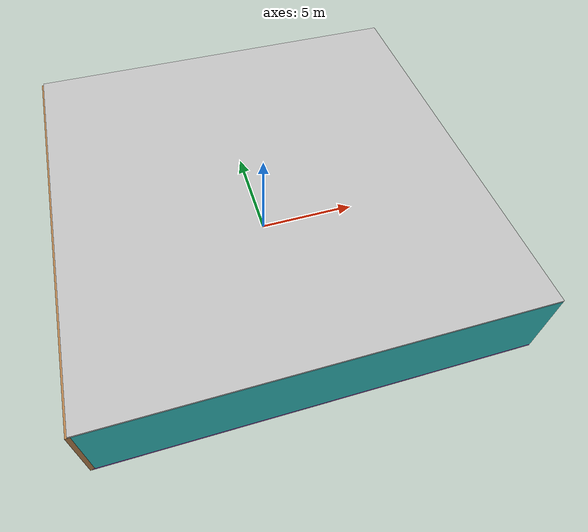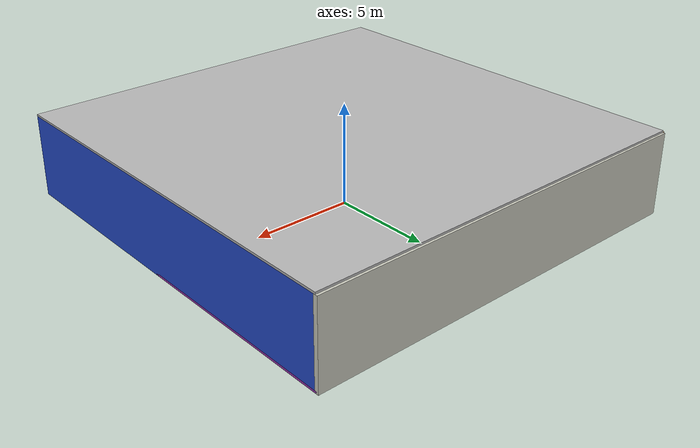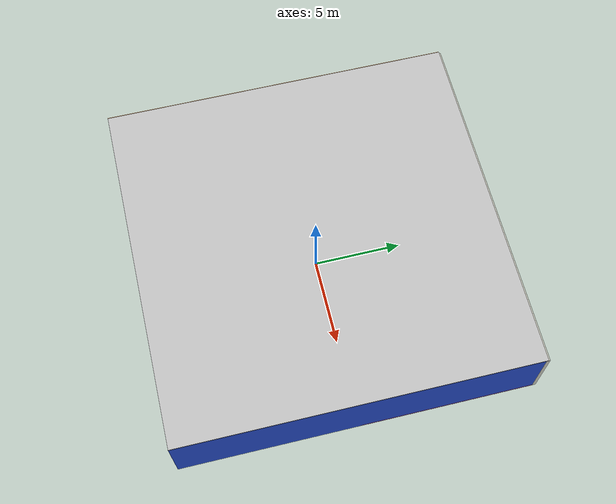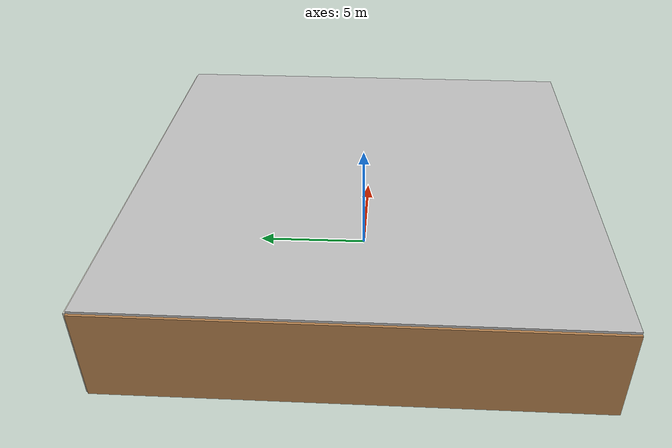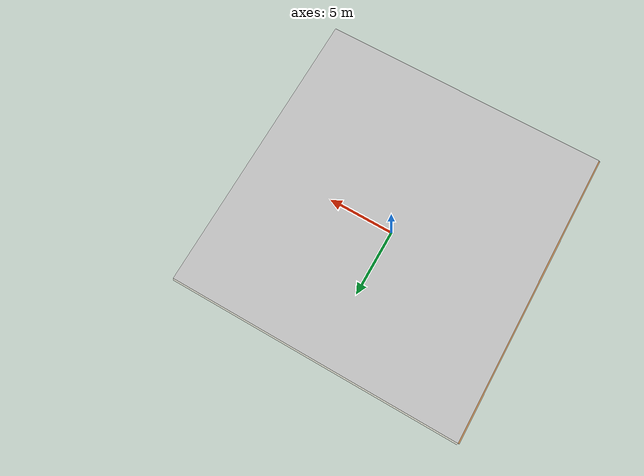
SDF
<sdf version="1.4">
 <world name="default">
  <physics type="ode">
   <max_step_size>0.001</max_step_size>
   <real_time_factor>1</real_time_factor>
   <real_time_update_rate>1000</real_time_update_rate>
   <gravity>0 0 -9.8</gravity>
  </physics>
  <scene><ambient>0.4 0.4 0.4 1</ambient><background>0.7 0.7 0.7 1</background><shadows>1</shadows></scene>
  <model name="Surrounding">
   <static>1</static>
   <link name="Ceiling">
    <collision name="Ceiling_Collision"><geometry><box><size>20 20 0.1</size></box></geometry></collision>
    <visual name="Ceiling_Visual">
     <geometry><box><size>20 20 0.1</size></box></geometry>
     <material>
      <script><uri>file://media/materials/scripts/gazebo.material</uri><name>Gazebo/PioneerBody</name></script>
     </material>
    </visual>
    <pose>0 0 4.05 0 0 0</pose>
   </link>
   <link name="Wall_South">
    <collision name="Wall_South_Collision">
     <geometry><box><size>20 0 4</size></box></geometry>
     <pose>0 0 2 0 -0 0</pose>
    </collision>
    <visual name="Wall_South_Visual">
     <pose>0 0 2 0 -0 0</pose>
     <geometry><box><size>20 0 4</size></box></geometry>
     <material>
      <script><uri>file://media/materials/scripts/gazebo.material</uri><name>Gazebo/Turquoise</name></script>
     </material>
    </visual>
    <velocity_decay><linear>0</linear><angular>0</angular></velocity_decay>
    <pose>0 -10 0 0 -0 0</pose>
   </link>
   <link name="Wall_East">
    <collision name="Wall_21_Collision">
     <geometry><box><size>20 0 4</size></box></geometry>
     <pose>0 0 2 0 -0 0</pose>
    </collision>
    <visual name="Wall_21_Visual">
     <pose>0 0 2 0 -0 0</pose>
     <geometry><box><size>20 0 4</size></box></geometry>
     <material>
      <script><uri>file://media/materials/scripts/gazebo.material</uri><name>Gazebo/BlueLaser</name></script>
     </material>
    </visual>
    <velocity_decay><linear>0</linear><angular>0</angular></velocity_decay>
    <pose>10 0 0 0 -0 1.5708</pose>
   </link>
   <link name="Wall_North">
    <collision name="Wall_22_Collision">
     <geometry><box><size>20 0.2 4</size></box></geometry>
     <pose>0 0 2 0 -0 0</pose>
    </collision>
    <visual name="Wall_22_Visual">
     <pose>0 0 2 0 -0 0</pose>
     <geometry><box><size>20 0.2 4</size></box></geometry>
     <material>
      <script><uri>file://media/materials/scripts/gazebo.material</uri><name>Gazebo/PaintedWall</name></script>
     </material>
    </visual>
    <velocity_decay><linear>0</linear><angular>0</angular></velocity_decay>
    <pose>0 10 0 0 -0 0</pose>
   </link>
   <link name="Wall_West">
    <collision name="Wall_23_Collision">
     <geometry><box><size>20 0.2 4</size></box></geometry>
     <pose>0 0 2 0 -0 0</pose>
    </collision>
    <visual name="Wall_23_Visual">
     <pose>0 0 2 0 -0 0</pose>
     <geometry><box><size>20 0.2 4</size></box></geometry>
     <material>
      <script><uri>file://media/materials/scripts/gazebo.material</uri><name>Gazebo/WoodPallet</name></script>
     </material>
    </visual>
    <velocity_decay><linear>0</linear><angular>0</angular></velocity_decay>
    <pose>-10 0 0 0 0 -1.5708</pose>
   </link>
   <link name="Ground_link">
    <collision name="collision">
     <pose>0 0 .05 0 -0 0</pose>
     <geometry><box><size>20 20 0.1</size></box></geometry>
    </collision>
    <visual name="visual">
     <pose>0 0 .05 0 -0 0</pose>
     <geometry><box><size>20 20 0.1</size></box></geometry>
     <material>
      <script><uri>file://media/materials/scripts/gazebo.material</uri><name>Gazebo/Purple</name></script>
     </material>
    </visual>
   </link>
   <static>1</static>
  </model>
  <spherical_coordinates>
   <surface_model>EARTH_WGS84</surface_model>
   <latitude_deg>0</latitude_deg>
   <longitude_deg>0</longitude_deg>
   <elevation>0</elevation>
   <heading_deg>0</heading_deg>
  </spherical_coordinates>
  <light name="lightball_0" type="diffuse">
   <diffuse>0.8 0.8 0.8 1</diffuse>
   <specular>0.2 0.2 0.2 1</specular>
   <attenuation>
    <range>100</range>
    <constant>0.7</constant>
    <linear>0.01</linear>
    <quadratic>0.001</quadratic>
   </attenuation>
   <direction>-0.5 0.1 -0.9</direction>
   <pose>5.11846573708 -8.44305306389 2.3760229936 0 0 0</pose>
  </light>
  <light name="lightball_1" type="diffuse">
   <diffuse>0.8 0.8 0.8 1</diffuse>
   <specular>0.2 0.2 0.2 1</specular>
   <attenuation>
    <range>100</range>
    <constant>0.7</constant>
    <linear>0.01</linear>
    <quadratic>0.001</quadratic>
   </attenuation>
   <direction>-0.5 0.1 -0.9</direction>
   <pose>-8.39721751095 -7.7117142358 0.935782062401 0 0 0</pose>
  </light>
  <light name="lightball_2" type="diffuse">
   <diffuse>0.8 0.8 0.8 1</diffuse>
   <specular>0.2 0.2 0.2 1</specular>
   <attenuation>
    <range>100</range>
    <constant>0.7</constant>
    <linear>0.01</linear>
    <quadratic>0.001</quadratic>
   </attenuation>
   <direction>-0.5 0.1 -0.9</direction>
   <pose>-3.67483126594 -4.66076038641 2.30879821623 0 0 0</pose>
  </light>
  <light name="lightball_3" type="diffuse">
   <diffuse>0.8 0.8 0.8 1</diffuse>
   <specular>0.2 0.2 0.2 1</specular>
   <attenuation>
    <range>100</range>
    <constant>0.7</constant>
    <linear>0.01</linear>
    <quadratic>0.001</quadratic>
   </attenuation>
   <direction>-0.5 0.1 -0.9</direction>
   <pose>-5.31210328382 4.22473952198 2.59363272094 0 0 0</pose>
  </light>
  <light name="lightball_4" type="diffuse">
   <diffuse>0.8 0.8 0.8 1</diffuse>
   <specular>0.2 0.2 0.2 1</specular>
   <attenuation>
    <range>100</range>
    <constant>0.7</constant>
    <linear>0.01</linear>
    <quadratic>0.001</quadratic>
   </attenuation>
   <direction>-0.5 0.1 -0.9</direction>
   <pose>-0.798888419788 -9.38702787905 1.99108454501 0 0 0</pose>
  </light>
  <light name="lightball_5" type="diffuse">
   <diffuse>0.8 0.8 0.8 1</diffuse>
   <specular>0.2 0.2 0.2 1</specular>
   <attenuation>
    <range>100</range>
    <constant>0.7</constant>
    <linear>0.01</linear>
    <quadratic>0.001</quadratic>
   </attenuation>
   <direction>-0.5 0.1 -0.9</direction>
   <pose>-6.551361257 9.38058657788 2.18784242377 0 0 0</pose>
  </light>
  <light name="lightball_6" type="diffuse">
   <diffuse>0.8 0.8 0.8 1</diffuse>
   <specular>0.2 0.2 0.2 1</specular>
   <attenuation>
    <range>100</range>
    <constant>0.7</constant>
    <linear>0.01</linear>
    <quadratic>0.001</quadratic>
   </attenuation>
   <direction>-0.5 0.1 -0.9</direction>
   <pose>-6.09427016537 -5.72797731288 2.99444912212 0 0 0</pose>
  </light>
  <light name="lightball_7" type="diffuse">
   <diffuse>0.8 0.8 0.8 1</diffuse>
   <specular>0.2 0.2 0.2 1</specular>
   <attenuation>
    <range>100</range>
    <constant>0.7</constant>
    <linear>0.01</linear>
    <quadratic>0.001</quadratic>
   </attenuation>
   <direction>-0.5 0.1 -0.9</direction>
   <pose>-6.92548031812 -8.1780889997 1.81437398416 0 0 0</pose>
  </light>
  <light name="lightball_8" type="diffuse">
   <diffuse>0.8 0.8 0.8 1</diffuse>
   <specular>0.2 0.2 0.2 1</specular>
   <attenuation>
    <range>100</range>
    <constant>0.7</constant>
    <linear>0.01</linear>
    <quadratic>0.001</quadratic>
   </attenuation>
   <direction>-0.5 0.1 -0.9</direction>
   <pose>2.50984867634 -4.60169064316 1.28998446292 0 0 0</pose>
  </light>
  <light name="lightball_9" type="diffuse">
   <diffuse>0.8 0.8 0.8 1</diffuse>
   <specular>0.2 0.2 0.2 1</specular>
   <attenuation>
    <range>100</range>
    <constant>0.7</constant>
    <linear>0.01</linear>
    <quadratic>0.001</quadratic>
   </attenuation>
   <direction>-0.5 0.1 -0.9</direction>
   <pose>3.77612715539 4.3332060756 2.37881886262 0 0 0</pose>
  </light>
  <light name="lightball_10" type="diffuse">
   <diffuse>0.8 0.8 0.8 1</diffuse>
   <specular>0.2 0.2 0.2 1</specular>
   <attenuation>
    <range>100</range>
    <constant>0.7</constant>
    <linear>0.01</linear>
    <quadratic>0.001</quadratic>
   </attenuation>
   <direction>-0.5 0.1 -0.9</direction>
   <pose>9.72158828163 1.45046033778 2.28217679916 0 0 0</pose>
  </light>
  <light name="lightball_11" type="diffuse">
   <diffuse>0.8 0.8 0.8 1</diffuse>
   <specular>0.2 0.2 0.2 1</specular>
   <attenuation>
    <range>100</range>
    <constant>0.7</constant>
    <linear>0.01</linear>
    <quadratic>0.001</quadratic>
   </attenuation>
   <direction>-0.5 0.1 -0.9</direction>
   <pose>2.30603531835 -0.882401184698 3.03801120774 0 0 0</pose>
  </light>
  <light name="lightball_12" type="diffuse">
   <diffuse>0.8 0.8 0.8 1</diffuse>
   <specular>0.2 0.2 0.2 1</specular>
   <attenuation>
    <range>100</range>
    <constant>0.7</constant>
    <linear>0.01</linear>
    <quadratic>0.001</quadratic>
   </attenuation>
   <direction>-0.5 0.1 -0.9</direction>
   <pose>-4.40215167249 9.56719780156 3.68469530559 0 0 0</pose>
  </light>
  <light name="lightball_13" type="diffuse">
   <diffuse>0.8 0.8 0.8 1</diffuse>
   <specular>0.2 0.2 0.2 1</specular>
   <attenuation>
    <range>100</range>
    <constant>0.7</constant>
    <linear>0.01</linear>
    <quadratic>0.001</quadratic>
   </attenuation>
   <direction>-0.5 0.1 -0.9</direction>
   <pose>4.64489474769 8.19989008566 2.70841901151 0 0 0</pose>
  </light>
  <include><uri>model://cabinet</uri><pose>-7.64253740947 -4.84911069386 0 0 0 1.76674064738</pose></include>
  <include><uri>model://cabinet</uri><pose>-4.44680863886 -8.2856841974 0 0 0 0.0333145781549</pose></include>
  <include>
   <uri>model://construction_cone</uri>
   <pose>-4.58379407339 7.84775652056 0 0 0 2.94860144532</pose>
  </include>
  <include>
   <uri>model://construction_cone</uri>
   <pose>-1.69898473023 -7.84261509219 0 0 0 2.43953228439</pose>
  </include>
  <include>
   <uri>model://robocup_3Dsim_goal</uri>
   <pose>1.02189051096 -3.80892521739 0 0 0 2.16065376868</pose>
  </include>
  <include><uri>model://cabinet</uri><pose>1.73312787046 4.60435951415 0 0 0 0.288834886662</pose></include>
  <include><uri>model://cabinet</uri><pose>5.24586826498 -5.16517162966 0 0 0 3.1331907439</pose></include>
  <include><uri>model://cabinet</uri><pose>4.0352502042 3.96331525296 0 0 0 2.93329603117</pose></include>
  <include><uri>model://cabinet</uri><pose>4.31372145894 6.76247035715 0 0 0 1.51187698907</pose></include>
  <include><uri>model://cabinet</uri><pose>6.75088401621 5.16457158368 0 0 0 1.18674105935</pose></include>
 </world>
</sdf>

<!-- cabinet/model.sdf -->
<sdf version="1.5">
  <model name="cabinet">
    <static>true</static>
    <link name="cabinet_bottom_plate">
      <inertial>
        <pose>0 0 -1 0 0 0</pose>
        <inertia>
          <ixx>2.050000</ixx>
          <ixy>0</ixy>
          <ixz>0</ixz>
          <iyy>2.050000</iyy>
          <iyz>0</iyz>
          <izz>2.050000</izz>
        </inertia>
        <mass>25.000000</mass>
      </inertial>
      <collision name="cabinet_bottom_plate_geom">
        <pose>0 0 0.010000 0 0 0</pose>
        <geometry>
          <box>
            <size>0.450000 0.450000 0.020000</size>
          </box>
        </geometry>
      </collision>
      <visual name="cabinet_bottom_plate_geom_visual">
        <pose>0 0 0.010000 0 0 0</pose>
        <geometry>
          <box>
            <size>0.450000 0.450000 0.020000</size>
          </box>
        </geometry>
        <material>
          <script>
            <uri>model://media/materials/scripts/gazebo.material</uri>
            <name>Gazebo/Wood</name>
          </script>
        </material>
      </visual>
      <collision name="cabinet_bottom_plate_geom_cabinet_back_plate">
        <pose>0.235000 0 0.510000 0 0 0</pose>
        <geometry>
          <box>
            <size>0.020000 0.450000 1.020000</size>
          </box>
        </geometry>
      </collision>
      <visual name="cabinet_bottom_plate_geom_cabinet_back_plate_visual">
        <pose>0.235000 0 0.510000 0 0 0</pose>
        <geometry>
          <box>
            <size>0.020000 0.450000 1.020000</size>
          </box>
        </geometry>
        <material>
          <script>
            <uri>model://media/materials/scripts/gazebo.material</uri>
            <name>Gazebo/Wood</name>
          </script>
        </material>
      </visual>
      <collision name="cabinet_bottom_plate_geom_cabinet_left_plate">
        <pose>0 0.235000 0.510000 0 0 0</pose>
        <geometry>
          <box>
            <size>0.450000 0.020000 1.020000</size>
          </box>
        </geometry>
      </collision>
      <visual name="cabinet_bottom_plate_geom_cabinet_left_plate_visual">
        <pose>0 0.235000 0.510000 0 0 0</pose>
        <geometry>
          <box>
            <size>0.450000 0.020000 1.020000</size>
          </box>
        </geometry>
        <material>
          <script>
            <uri>model://media/materials/scripts/gazebo.material</uri>
            <name>Gazebo/Wood</name>
          </script>
        </material>
      </visual>
      <collision name="cabinet_bottom_plate_geom_cabinet_middle_plate">
        <pose>0 0 0.510000 0 0 0</pose>
        <geometry>
          <box>
            <size>0.450000 0.450000 0.020000</size>
          </box>
        </geometry>
      </collision>
      <visual name="cabinet_bottom_plate_geom_cabinet_middle_plate_visual">
        <pose>0 0 0.510000 0 0 0</pose>
        <geometry>
          <box>
            <size>0.450000 0.450000 0.020000</size>
          </box>
        </geometry>
        <material>
          <script>
            <uri>model://media/materials/scripts/gazebo.material</uri>
            <name>Gazebo/Wood</name>
          </script>
        </material>
      </visual>
      <collision name="cabinet_bottom_plate_geom_cabinet_right_plate">
        <pose>0 -0.235000 0.510000 0 0 0</pose>
        <geometry>
          <box>
            <size>0.450000 0.020000 1.020000</size>
          </box>
        </geometry>
      </collision>
      <visual name="cabinet_bottom_plate_geom_cabinet_right_plate_visual">
        <pose>0 -0.235000 0.510000 0 0 0</pose>
        <geometry>
          <box>
            <size>0.450000 0.020000 1.020000</size>
          </box>
        </geometry>
        <material>
          <script>
            <uri>model://media/materials/scripts/gazebo.material</uri>
            <name>Gazebo/Wood</name>
          </script>
        </material>
      </visual>
      <collision name="cabinet_bottom_plate_geom_cabinet_top_plate">
        <pose>0 0 1.010000 0 0 0</pose>
        <geometry>
          <box>
            <size>0.450000 0.450000 0.020000</size>
          </box>
        </geometry>
      </collision>
      <visual name="cabinet_bottom_plate_geom_cabinet_top_plate_visual">
        <pose>0 0 1.010000 0 0 0</pose>
        <geometry>
          <box>
            <size>0.450000 0.450000 0.020000</size>
          </box>
        </geometry>
        <material>
          <script>
            <uri>model://media/materials/scripts/gazebo.material</uri>
            <name>Gazebo/Wood</name>
          </script>
        </material>
      </visual>
    </link>
  </model>
</sdf>

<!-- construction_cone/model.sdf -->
<sdf version="1.5">
  <model name="Construction Cone">
    <link name="link">
      <collision name="collision">
        <geometry>
          <mesh>
            <scale>10 10 10</scale>
            <uri>file://isr-testbed/construction_cone/meshes/construction_cone.dae</uri>
          </mesh>
        </geometry>
      </collision>
      <visual name="visual">
        <geometry>
          <mesh>
            <scale>10 10 10</scale>
            <uri>file://isr-testbed/construction_cone/meshes/construction_cone.dae</uri>
          </mesh>
        </geometry>
      </visual>
    </link>
  </model>
</sdf>

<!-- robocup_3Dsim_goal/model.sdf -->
<sdf version="1.5">
  <model name="robocup_3d_goal">
    <static>true</static>
    <link name="left_post">
      <pose>0 1.05 0.45 0 0 0</pose>
      <collision name="collision">
        <geometry>
          <cylinder>
            <radius>0.05</radius>
            <length>0.9</length>
          </cylinder>
        </geometry>
      </collision>
      <visual name="visual">
        <geometry>
          <cylinder>
            <radius>0.05</radius>
            <length>0.9</length>
          </cylinder>
        </geometry>
        <material>
          <script>
            <uri>file://media/materials/scripts/gazebo.material</uri>
            <name>Gazebo/ZincYellow</name>
          </script>
        </material>
      </visual>
    </link>
    <link name="left_support_horiz_lower">
      <pose>0.30 1.05 0.01 0 0 0</pose>
      <collision name="collision">
        <geometry>
          <box>
            <size>0.50 0.02 0.02</size>
          </box>
        </geometry>
      </collision>
      <visual name="visual">
        <geometry>
          <box>
            <size>0.50 0.02 0.02</size>
          </box>
        </geometry>
        <material>
          <script>
            <uri>file://media/materials/scripts/gazebo.material</uri>
            <name>Gazebo/White</name>
          </script>
        </material>
      </visual>
    </link>
    <link name="left_support_horiz_upper">
      <pose>0.30 1.05 0.79 0 0 0</pose>
      <collision name="collision">
        <geometry>
          <box>
            <size>0.50 0.02 0.02</size>
          </box>
        </geometry>
      </collision>
      <visual name="visual">
        <geometry>
          <box>
            <size>0.50 0.02 0.02</size>
          </box>
        </geometry>
        <material>
          <script>
            <uri>file://media/materials/scripts/gazebo.material</uri>
            <name>Gazebo/White</name>
          </script>
        </material>
      </visual>
    </link>
    <link name="left_support_vertical">
      <pose>0.56 1.05 0.4 0 1.5708 0</pose>
      <collision name="collision">
        <geometry>
          <box>
            <size>0.80 0.02 0.02</size>
          </box>
        </geometry>
      </collision>
      <visual name="visual">
        <geometry>
          <box>
            <size>0.80 0.02 0.02</size>
          </box>
        </geometry>
        <material>
          <script>
            <uri>file://media/materials/scripts/gazebo.material</uri>
            <name>Gazebo/White</name>
          </script>
        </material>
      </visual>
    </link>
    <link name="right_support_horiz_lower">
      <pose>0.30 -1.05 0.01 0 0 0</pose>
      <collision name="collision">
        <geometry>
          <box>
            <size>0.50 0.02 0.02</size>
          </box>
        </geometry>
      </collision>
      <visual name="visual">
        <geometry>
          <box>
            <size>0.50 0.02 0.02</size>
          </box>
        </geometry>
        <material>
          <script>
            <uri>file://media/materials/scripts/gazebo.material</uri>
            <name>Gazebo/White</name>
          </script>
        </material>
      </visual>
    </link>
    <link name="right_support_horiz_upper">
      <pose>0.30 -1.05 0.79 0 0 0</pose>
      <collision name="collision">
        <geometry>
          <box>
            <size>0.50 0.02 0.02</size>
          </box>
        </geometry>
      </collision>
      <visual name="visual">
        <geometry>
          <box>
            <size>0.50 0.02 0.02</size>
          </box>
        </geometry>
        <material>
          <script>
            <uri>file://media/materials/scripts/gazebo.material</uri>
            <name>Gazebo/White</name>
          </script>
        </material>
      </visual>
    </link>
    <link name="right_support_vertical">
      <pose>0.56 -1.05 0.4 0 1.5708 0</pose>
      <collision name="collision">
        <geometry>
          <box>
            <size>0.80 0.02 0.02</size>
          </box>
        </geometry>
      </collision>
      <visual name="visual">
        <geometry>
          <box>
            <size>0.80 0.02 0.02</size>
          </box>
        </geometry>
        <material>
          <script>
            <uri>file://media/materials/scripts/gazebo.material</uri>
            <name>Gazebo/White</name>
          </script>
        </material>
      </visual>
    </link>
    <link name="center_support_horiz_lower">
      <pose>0.56 0 0.01 0 1.5708 0</pose>
      <collision name="collision">
        <geometry>
          <box>
            <size>0.02 2.08 0.02</size>
          </box>
        </geometry>
      </collision>
      <visual name="visual">
        <geometry>
          <box>
            <size>0.02 2.08 0.02</size>
          </box>
        </geometry>
        <material>
          <script>
            <uri>file://media/materials/scripts/gazebo.material</uri>
            <name>Gazebo/White</name>
          </script>
        </material>
      </visual>
    </link>
    <link name="center_support_horiz_upper">
      <pose>0.56 0 0.79 0 1.5708 0</pose>
      <collision name="collision">
        <geometry>
          <box>
            <size>0.02 2.08 0.02</size>
          </box>
        </geometry>
      </collision>
      <visual name="visual">
        <geometry>
          <box>
            <size>0.02 2.08 0.02</size>
          </box>
        </geometry>
        <material>
          <script>
            <uri>file://media/materials/scripts/gazebo.material</uri>
            <name>Gazebo/White</name>
          </script>
        </material>
      </visual>
    </link>
    <link name="right_post">
      <pose>0 -1.05 0.45 0 0 0</pose>
      <collision name="collision">
        <geometry>
          <cylinder>
            <radius>0.05</radius>
            <length>0.9</length>
          </cylinder>
        </geometry>
      </collision>
      <visual name="visual">
        <geometry>
          <cylinder>
            <radius>0.05</radius>
            <length>0.9</length>
          </cylinder>
        </geometry>
        <material>
          <script>
            <uri>file://media/materials/scripts/gazebo.material</uri>
            <name>Gazebo/ZincYellow</name>
          </script>
        </material>
      </visual>
    </link>
    <link name="crossbar">
      <pose>0 0 0.85 1.57 1.57 0</pose>
      <collision name="collision">
        <geometry>
          <cylinder>
            <radius>0.05</radius>
            <length>2.0</length>
          </cylinder>
        </geometry>
      </collision>
      <visual name="visual">
        <geometry>
          <cylinder>
            <radius>0.05</radius>
            <length>2.0</length>
          </cylinder>
        </geometry>
        <material>
          <script>
            <uri>file://media/materials/scripts/gazebo.material</uri>
            <name>Gazebo/ZincYellow</name>
          </script>
        </material>
      </visual>
    </link>
    <link name="center_net">
      <pose>0.56 0 0.40 0 0 0</pose>
      <collision name="collision">
        <geometry>
          <box>
            <size>0.01 2.1 0.80</size>
          </box>
        </geometry>
      </collision>
      <visual name="visual">
        <geometry>
          <box>
            <size>0.01 2.1 0.80</size>
          </box>
        </geometry>
        <material>
          <script>
            <uri>model://../model_source/models/robocup09_spl_field/materials/scripts/</uri>
            <uri>model://../model_source/models/robocup09_spl_field/materials/textures/</uri>
            <name>RoboCup/Net</name>
          </script>
        </material>
      </visual>
    </link>
    <link name="left_net">
      <pose>0.30 1.05 0.40 0 0 0</pose>
      <collision name="collision">
        <geometry>
          <box>
            <size>0.50 0.01 0.76</size>
          </box>
        </geometry>
      </collision>
      <visual name="visual">
        <geometry>
          <box>
            <size>0.50 0.01 0.76</size>
          </box>
        </geometry>
        <material>
          <script>
            <uri>model://../model_source/models/robocup09_spl_field/materials/scripts/</uri>
            <uri>model://../model_source/models/robocup09_spl_field/materials/textures/</uri>
            <name>RoboCup/Net</name>
          </script>
        </material>
      </visual>
    </link>
    <link name="right_net">
      <pose>0.30 -1.05 0.40 0 0 0</pose>
      <collision name="collision">
        <geometry>
          <box>
            <size>0.50 0.01 0.76</size>
          </box>
        </geometry>
      </collision>
      <visual name="visual">
        <geometry>
          <box>
            <size>0.50 0.01 0.76</size>
          </box>
        </geometry>
        <material>
          <script>
            <uri>model://../model_source/models/robocup09_spl_field/materials/scripts/</uri>
            <uri>model://../model_source/models/robocup09_spl_field/materials/textures/</uri>
            <name>RoboCup/Net</name>
          </script>
        </material>
      </visual>
    </link>
  </model>
</sdf>
